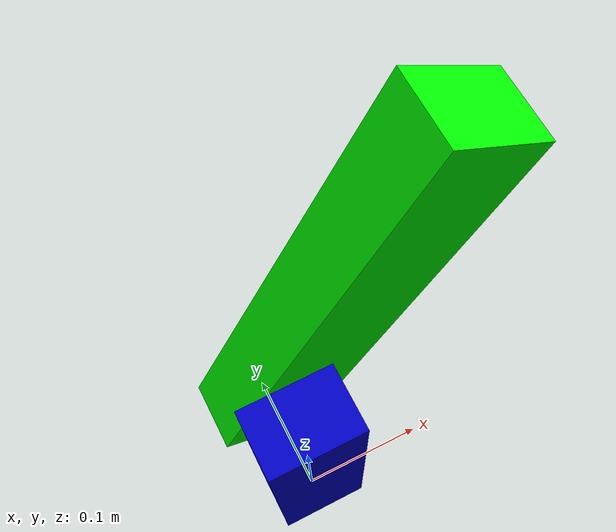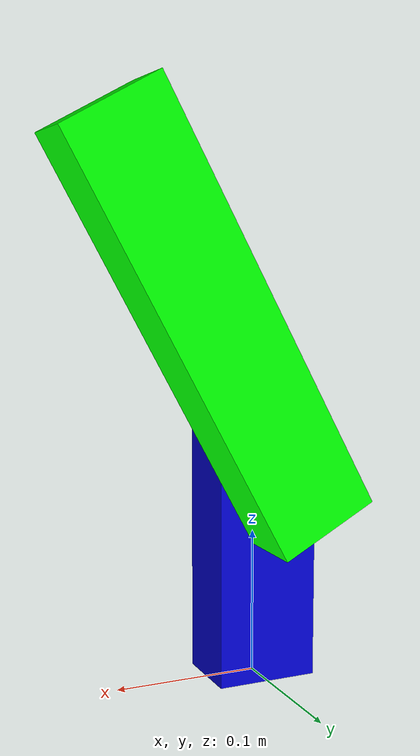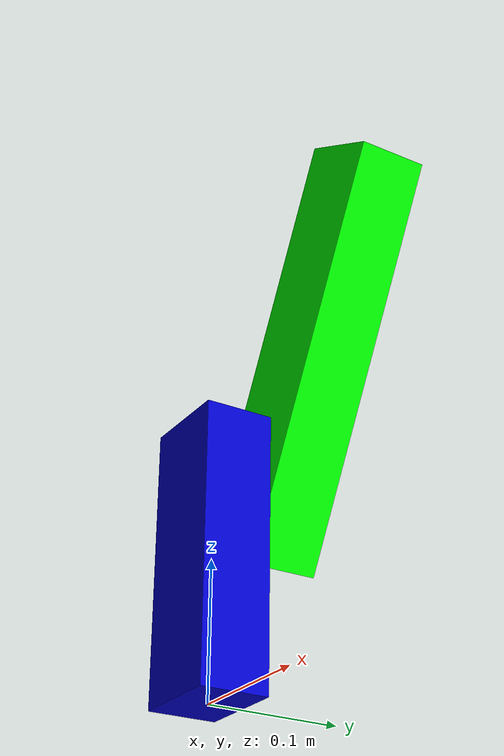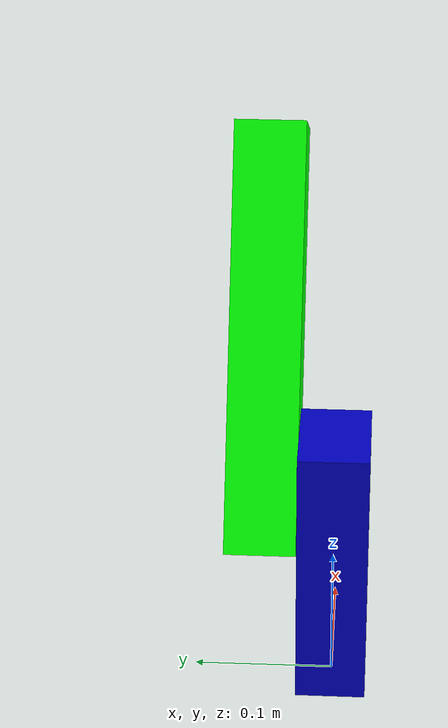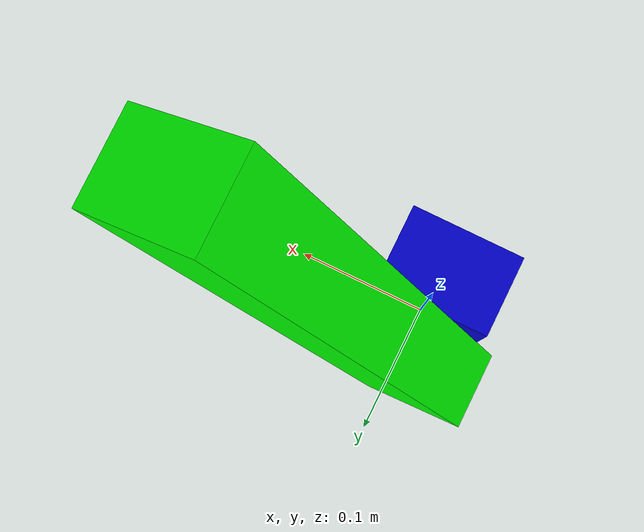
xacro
<?xml version="1.0"?>
<robot>
  <property name="joint_damping" value="0.1"/>
  <property name="joint_friction" value="0.0"/>

  <link name="world"/>
  <link name="base_link">
    <inertial>
      <mass value="1.0"/>
      <inertia ixx="1.0" ixy="0.0" ixz="0.0" iyy="1.0" iyz="0.0" izz="1.0"/>
    </inertial>
    <visual>
      <geometry>
        <box size="0.07 0.05 0.2"/>
      </geometry>
      <origin rpy="0 0 0" xyz="0 0 0.1"/>
      <material name="blue">
        <color rgba="0 0 0.8 1"/>
      </material>
    </visual>
    <collision>
      <geometry>
        <box size="0.07 0.05 0.2"/>
      </geometry>
      <origin rpy="0 0 0" xyz="0 0 0.1"/>
    </collision>
  </link>

  <link name="second_link">
    <inertial>
      <mass value="1.0"/>
      <inertia ixx="1.0" ixy="0.0" ixz="0.0" iyy="1.0" iyz="0.0" izz="1.0"/>
    </inertial>
    <visual>
      <geometry>
        <box size="0.07 0.05 0.3"/>
      </geometry>
      <origin rpy="0 0 0" xyz="0 0.025 0.11"/>
      <material name="green">
        <color rgba="0 1 0 1"/>
      </material>
    </visual>
    <collision>
      <geometry>
        <box size="0.07 0.05 0.3"/>
      </geometry>
      <origin rpy="0 0 0" xyz="0 0.025 0.11"/>
    </collision>
  </link>

  <joint name="myrobot_joint1" type="fixed">
    <parent link="world" />
    <child link="base_link"/>
    <origin rpy="0 0 0"  xyz="0.0 0.0 0.0"/>
  </joint>

  <joint name="myrobot_joint2" type="continuous">
    <axis xyz="0 1 0"/>
    <parent link="base_link"/>
    <child link="second_link"/>
    <origin rpy = "0 0.5 0" xyz="0 0.025 0.15"/>
    <limit effort="1000" velocity="1000"/>
    <joint_properties damping="${joint_damping}" friction="${joint_friction}"/>
  </joint>

  <gazebo reference="base_link">
    <material>Gazebo/Blue</material>
  </gazebo>

  <gazebo reference="second_link">
    <material>Gazebo/Green</material>
    <selfCollide>false</selfCollide>
    <sensor type="contact" name="second_link_contact_sensor">
      <update_rate>50.0</update_rate>
      <contact>
        <collision>second_link_geom</collision>
      </contact>
      <plugin name="second_link_gazebo_ros_bumper_controller" filename="libgazebo_ros_bumper.so">
        <alwaysOn>true</alwaysOn>
        <updateRate>50.0</updateRate>
        <bumperTopicName>myrobot_controller/second_link_contact</bumperTopicName>
      </plugin>
    </sensor>
  </gazebo>
</robot>
